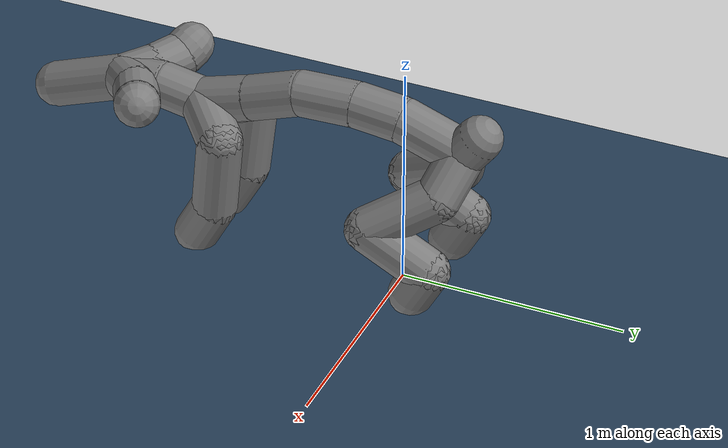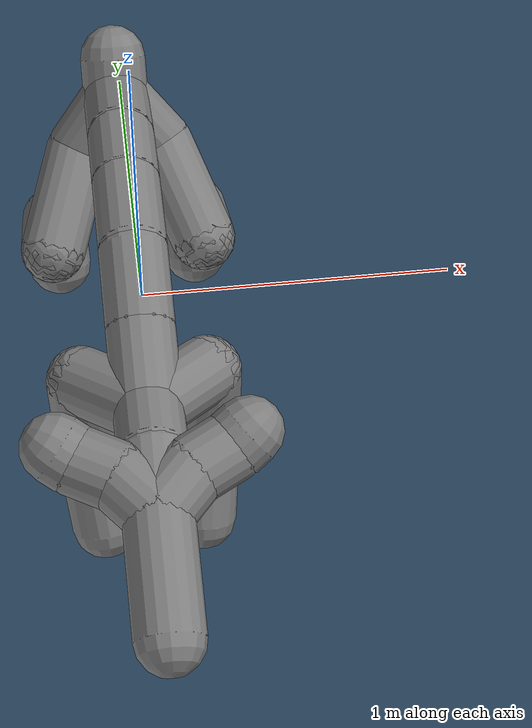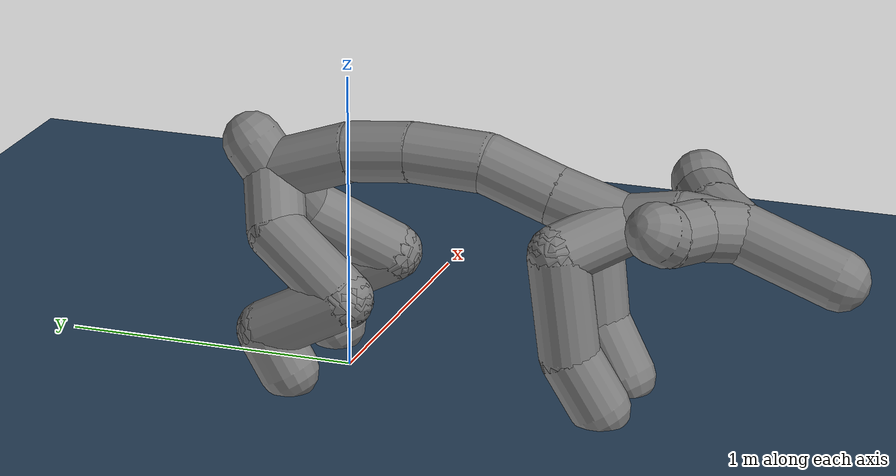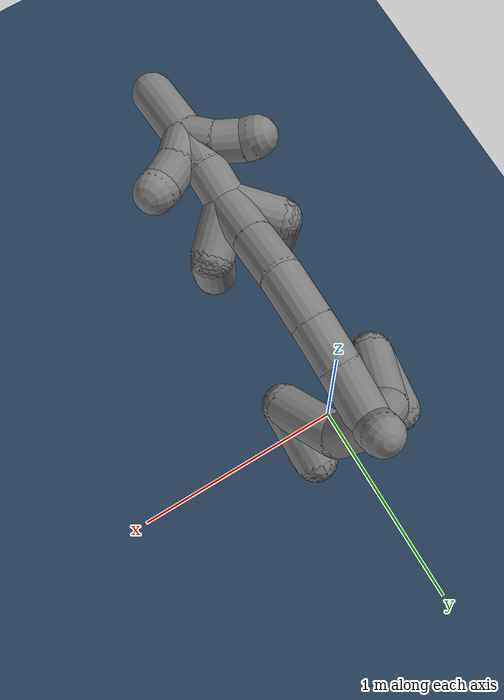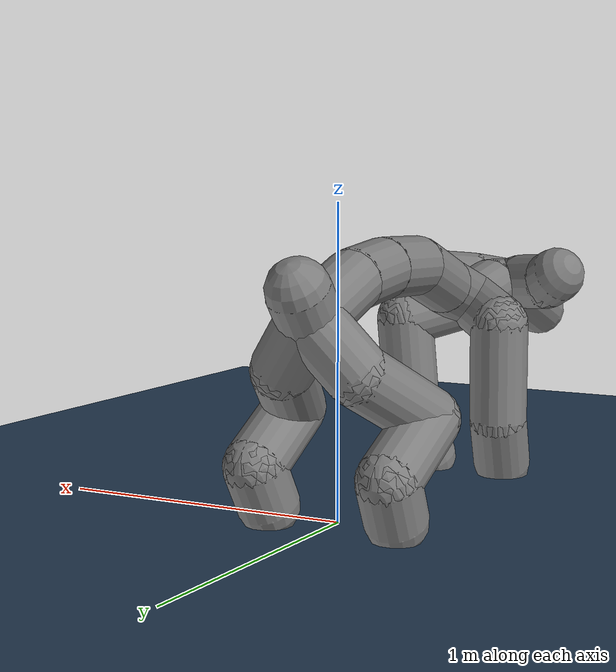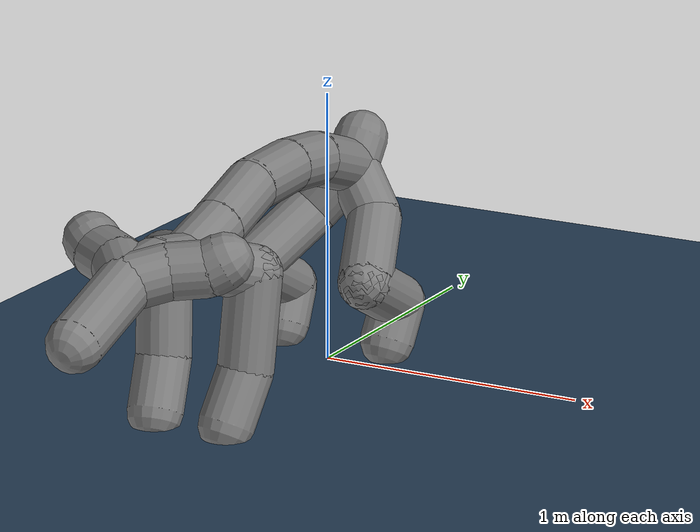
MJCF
<mujoco model="unnamed_model">
  <compiler angle="degree"/>
  <option timestep="0.001" gravity="0 0 -5" integrator="RK4"/>
  <default>
    <default class="/">
      <geom friction="2 0.0050000000000000001 0.0001"/>
      <tendon range="-1 1"/>
      <general ctrllimited="true" forcelimited="false" ctrlrange="-1 1" gainprm="16"/>
      <motor gear="200"/>
    </default>
  </default>
  <asset>
    <texture name="grid" type="2d" builtin="checker" rgb1="0.10000000000000001 0.20000000000000001 0.29999999999999999" rgb2="0.20000000000000001 0.29999999999999999 0.40000000000000002" width="512" height="512"/>
    <material name="grid" class="/" texture="grid" texrepeat="1 1" texuniform="true" reflectance="0.20000000000000001"/>
  </asset>
  <worldbody>
    <geom name="floor" class="/" type="plane" condim="3" size="0 0 0.050000000000000003" material="grid" density="800"/>
    <body name="Back_1" pos="-0.03638419508934021 0.32031768560409546 0.75876384973526001">
      <joint name="//unnamed_joint_0" class="/" type="free"/>
      <geom name="Back_1_geom" class="/" type="capsule" size="0.10000000000000001" density="800" fromto="0 0 0 0 -0.071091830730438232 -0.092527091503143311"/>
      <body name="Back_2" pos="0 -0.071091830730438232 -0.092527091503143311">
        <joint name="rx_Back_2" class="/" type="hinge" axis="1 0 0" stiffness="25" range="-15.000000417413029 15.000000417413029" damping="0.5"/>
        <joint name="ry_Back_2" class="/" type="hinge" axis="0 1 0" stiffness="25" range="-9.9999997090929202 9.9999997090929202" damping="0.5"/>
        <joint name="rz_Back_2" class="/" type="hinge" axis="0 0 1" stiffness="25" range="-15.000000417413029 15.000000417413029" damping="0.5"/>
        <geom name="Back_2_geom" class="/" type="capsule" size="0.10000000000000001" density="800" fromto="0 0 0 0 -0.2740018367767334 0.095168530941009521"/>
        <body name="Back_3" pos="0 -0.2740018367767334 0.095168530941009521">
          <joint name="rx_Back_3" class="/" type="hinge" axis="1 0 0" stiffness="25" range="-15.000000417413029 15.000000417413029" damping="0.5"/>
          <joint name="ry_Back_3" class="/" type="hinge" axis="0 1 0" stiffness="25" range="-9.9999997090929202 9.9999997090929202" damping="0.5"/>
          <joint name="rz_Back_3" class="/" type="hinge" axis="0 0 1" stiffness="25" range="-15.000000417413029 15.000000417413029" damping="0.5"/>
          <geom name="Back_3_geom" class="/" type="capsule" size="0.10000000000000001" density="800" fromto="0 0 0 0 -0.2097725123167038 0.021728336811065674"/>
          <body name="Back_4" pos="0 -0.2097725123167038 0.021728336811065674">
            <joint name="rx_Back_4" class="/" type="hinge" axis="1 0 0" stiffness="25" range="-15.000000417413029 15.000000417413029" damping="0.5"/>
            <joint name="ry_Back_4" class="/" type="hinge" axis="0 1 0" stiffness="25" range="-9.9999997090929202 9.9999997090929202" damping="0.5"/>
            <joint name="rz_Back_4" class="/" type="hinge" axis="0 0 1" stiffness="25" range="-15.000000417413029 15.000000417413029" damping="0.5"/>
            <geom name="Back_4_geom" class="/" type="capsule" size="0.10000000000000001" density="800" fromto="0 0 0 0 -0.25589346885681152 -0.0089598298072814941"/>
            <body name="Back_5" pos="0 -0.25589346885681152 -0.0089598298072814941">
              <joint name="rx_Back_5" class="/" type="hinge" axis="1 0 0" stiffness="25" range="-15.000000417413029 15.000000417413029" damping="0.5"/>
              <joint name="ry_Back_5" class="/" type="hinge" axis="0 1 0" stiffness="25" range="-9.9999997090929202 9.9999997090929202" damping="0.5"/>
              <joint name="rz_Back_5" class="/" type="hinge" axis="0 0 1" stiffness="25" range="-15.000000417413029 15.000000417413029" damping="0.5"/>
              <geom name="Back_5_geom" class="/" type="capsule" size="0.10000000000000001" density="800" fromto="0 0 0 0 -0.23085629940032959 -0.082915425300598145"/>
              <body name="Back_6" pos="0 -0.23085629940032959 -0.082915425300598145">
                <joint name="rx_Back_6" class="/" type="hinge" axis="1 0 0" stiffness="25" range="-15.000000417413029 15.000000417413029" damping="0.5"/>
                <joint name="ry_Back_6" class="/" type="hinge" axis="0 1 0" stiffness="25" range="-9.9999997090929202 9.9999997090929202" damping="0.5"/>
                <joint name="rz_Back_6" class="/" type="hinge" axis="0 0 1" stiffness="25" range="-15.000000417413029 15.000000417413029" damping="0.5"/>
                <geom name="Back_6_geom" class="/" type="capsule" size="0.10000000000000001" density="800" fromto="0 0 0 0 -0.23470097780227661 -0.07146763801574707"/>
                <body name="Neck" pos="0 -0.23470097780227661 -0.07146763801574707">
                  <geom name="Neck_geom" class="/" type="capsule" size="0.10000000000000001" density="800" fromto="0 0 0 0 -0.18661510944366455 0.033073067665100098"/>
                  <body name="Head" pos="0 -0.18661510944366455 0.033073067665100098">
                    <geom name="Head_geom" class="/" type="capsule" size="0.10000000000000001" density="800" fromto="0 0 0 -0.003004610538482666 -0.18622291088104248 -0.011018574237823486"/>
                    <body name="L_Ear_1" pos="-0.003004610538482666 -0.18622291088104248 -0.011018574237823486">
                      <geom name="L_Ear_1_geom" class="/" type="capsule" size="0.10000000000000001" density="800" fromto="0 0 0 0.098775967955589294 0.10522949695587158 0.025567770004272461"/>
                      <body name="L_Ear_2" pos="0.098775967955589294 0.10522949695587158 0.025567770004272461">
                        <geom name="L_Ear_2_geom" class="/" type="capsule" size="0.10000000000000001" density="800" fromto="0 0 0 0.1209293007850647 0.067456483840942383 0.010155320167541504"/>
                        <body name="L_Ear_3" pos="0.1209293007850647 0.067456483840942383 0.010155320167541504">
                          <geom name="L_Ear_3_geom" class="/" type="capsule" size="0.10000000000000001" density="800" fromto="0 0 0 0.045888260006904602 0.02377474308013916 0.026908338069915771"/>
                        </body>
                      </body>
                    </body>
                    <body name="R_Ear_1" pos="-0.003004610538482666 -0.18622291088104248 -0.011018574237823486">
                      <geom name="R_Ear_1_geom" class="/" type="capsule" size="0.10000000000000001" density="800" fromto="0 0 0 -0.092766717076301575 0.10522949695587158 0.025567770004272461"/>
                      <body name="R_Ear_2" pos="-0.092766717076301575 0.10522949695587158 0.025567770004272461">
                        <geom name="R_Ear_2_geom" class="/" type="capsule" size="0.10000000000000001" density="800" fromto="0 0 0 -0.12092931568622589 0.067456483840942383 0.010155320167541504"/>
                        <body name="R_Ear_3" pos="-0.12092931568622589 0.067456483840942383 0.010155320167541504">
                          <geom name="R_Ear_3_geom" class="/" type="capsule" size="0.10000000000000001" density="800" fromto="0 0 0 -0.045888215303421021 0.02377474308013916 0.026908338069915771"/>
                        </body>
                      </body>
                    </body>
                    <body name="Nose" pos="-0.003004610538482666 -0.18622291088104248 -0.011018574237823486">
                      <geom name="Nose_geom" class="/" type="capsule" size="0.10000000000000001" density="800" fromto="0 0 0 7.4505805969238281e-09 -0.33017373085021973 -0.12187623977661133"/>
                    </body>
                    <site name="Head" class="/" type="box" size="0.002 0.002 0.002"/>
                  </body>
                </body>
                <body name="L_F_Paw_1" pos="0 -0.23470097780227661 -0.07146763801574707">
                  <geom name="L_F_Paw_1_geom" class="/" type="capsule" size="0.10000000000000001" density="800" fromto="0 0 0 0.17953817546367645 0.16833937168121338 -0.060213387012481689"/>
                  <body name="L_F_Paw_2" pos="0.17953817546367645 0.16833937168121338 -0.060213387012481689">
                    <joint name="rx_L_F_Paw_2" class="/" type="hinge" axis="1 0 0" stiffness="10" range="-19.99999941818584 9.9999997090929202" damping="0.40000000000000002"/>
                    <joint name="ry_L_F_Paw_2" class="/" type="hinge" axis="0 1 0" stiffness="10" range="-19.99999941818584 19.99999941818584" damping="0.40000000000000002"/>
                    <joint name="rz_L_F_Paw_2" class="/" type="hinge" axis="0 0 1" stiffness="10" range="-45.00000125223908 45.00000125223908" damping="0.40000000000000002"/>
                    <geom name="L_F_Paw_2_geom" class="/" type="capsule" size="0.10000000000000001" density="800" fromto="0 0 0 -0.014132246375083923 -0.039042651653289795 -0.34415319561958313"/>
                    <body name="L_F_Paw_3" pos="-0.014132246375083923 -0.039042651653289795 -0.34415319561958313">
                      <joint name="rz_L_F_Paw_3" class="/" type="hinge" axis="0 0 1" stiffness="10" range="-30.000000834826057 30.000000834826057" damping="0.40000000000000002"/>
                      <geom name="L_F_Paw_3_geom" class="/" type="capsule" size="0.10000000000000001" density="800" fromto="0 0 0 -0.021816067397594452 -0.098170757293701172 -0.17515115439891815"/>
                    </body>
                  </body>
                </body>
                <body name="R_F_Paw_1" pos="0 -0.23470097780227661 -0.07146763801574707">
                  <geom name="R_F_Paw_1_geom" class="/" type="capsule" size="0.10000000000000001" density="800" fromto="0 0 0 -0.17953811585903168 0.16833937168121338 -0.060213387012481689"/>
                  <body name="R_F_Paw_2" pos="-0.17953811585903168 0.16833937168121338 -0.060213387012481689">
                    <joint name="rx_R_F_Paw_2" class="/" type="hinge" axis="1 0 0" stiffness="10" range="-19.99999941818584 9.9999997090929202" damping="0.40000000000000002"/>
                    <joint name="ry_R_F_Paw_2" class="/" type="hinge" axis="0 1 0" stiffness="10" range="-19.99999941818584 19.99999941818584" damping="0.40000000000000002"/>
                    <joint name="rz_R_F_Paw_2" class="/" type="hinge" axis="0 0 1" stiffness="10" range="-45.00000125223908 45.00000125223908" damping="0.40000000000000002"/>
                    <geom name="R_F_Paw_2_geom" class="/" type="capsule" size="0.10000000000000001" density="800" fromto="0 0 0 0.014132246375083923 -0.039042651653289795 -0.34415331482887268"/>
                    <body name="R_F_Paw_3" pos="0.014132246375083923 -0.039042651653289795 -0.34415331482887268">
                      <joint name="rz_R_F_Paw_3" class="/" type="hinge" axis="0 0 1" stiffness="10" range="-30.000000834826057 30.000000834826057" damping="0.40000000000000002"/>
                      <geom name="R_F_Paw_3_geom" class="/" type="capsule" size="0.10000000000000001" density="800" fromto="0 0 0 0.021816074848175049 -0.098170638084411621 -0.17515107989311218"/>
                    </body>
                  </body>
                </body>
              </body>
            </body>
          </body>
        </body>
      </body>
      <body name="R_B_Paw_1" pos="0 -0.071091830730438232 -0.092527091503143311">
        <joint name="rx_R_B_Paw_1" class="/" type="hinge" axis="1 0 0" stiffness="10" range="-39.999998836371681 39.999998836371681" damping="0.40000000000000002"/>
        <geom name="R_B_Paw_1_geom" class="/" type="capsule" size="0.10000000000000001" density="800" fromto="0 0 0 -0.12856116890907288 -0.060687735676765442 -0.1629948616027832"/>
        <body name="R_B_Paw_2" pos="-0.12856116890907288 -0.060687735676765442 -0.1629948616027832">
          <joint name="rx_R_B_Paw_2" class="/" type="hinge" axis="1 0 0" stiffness="10" range="-25.000000126505949 31.999999752116263" damping="0.40000000000000002"/>
          <joint name="ry_R_B_Paw_2" class="/" type="hinge" axis="0 1 0" stiffness="10" range="-19.99999941818584 19.99999941818584" damping="0.40000000000000002"/>
          <joint name="rz_R_B_Paw_2" class="/" type="hinge" axis="0 0 1" stiffness="10" range="-30.000000834826057 39.999998836371681" damping="0.40000000000000002"/>
          <geom name="R_B_Paw_2_geom" class="/" type="capsule" size="0.10000000000000001" density="800" fromto="0 0 0 -0.1057131290435791 -0.26967060565948486 -0.16305962204933167"/>
          <body name="R_B_Paw_3" pos="-0.1057131290435791 -0.26967060565948486 -0.16305962204933167">
            <joint name="rz_R_B_Paw_3" class="/" type="hinge" axis="0 0 1" stiffness="10" range="-39.999998836371681 15.000000417413029" damping="0.40000000000000002"/>
            <geom name="R_B_Paw_3_geom" class="/" type="capsule" size="0.10000000000000001" density="800" fromto="0 0 0 0.007300645112991333 0.27059853076934814 -0.14332710206508636"/>
            <body name="R_B_Paw_4" pos="0.007300645112991333 0.27059853076934814 -0.14332710206508636">
              <joint name="rz_R_B_Paw_4" class="/" type="hinge" axis="0 0 1" stiffness="10" range="-19.99999941818584 19.99999941818584" damping="0.40000000000000002"/>
              <geom name="R_B_Paw_4_geom" class="/" type="capsule" size="0.10000000000000001" density="800" fromto="0 0 0 0.006926417350769043 -0.073839575052261353 -0.13510023057460785"/>
            </body>
          </body>
        </body>
      </body>
      <body name="L_B_Paw_1" pos="0 -0.071091830730438232 -0.092527091503143311">
        <joint name="rx_L_B_Paw_1" class="/" type="hinge" axis="1 0 0" stiffness="10" range="-39.999998836371681 39.999998836371681" damping="0.40000000000000002"/>
        <geom name="L_B_Paw_1_geom" class="/" type="capsule" size="0.10000000000000001" density="800" fromto="0 0 0 0.12856115400791168 -0.060687720775604248 -0.1629948616027832"/>
        <body name="L_B_Paw_2" pos="0.12856115400791168 -0.060687720775604248 -0.1629948616027832">
          <joint name="rx_L_B_Paw_2" class="/" type="hinge" axis="1 0 0" stiffness="10" range="-25.000000126505949 31.999999752116263" damping="0.40000000000000002"/>
          <joint name="ry_L_B_Paw_2" class="/" type="hinge" axis="0 1 0" stiffness="10" range="-19.99999941818584 19.99999941818584" damping="0.40000000000000002"/>
          <joint name="rz_L_B_Paw_2" class="/" type="hinge" axis="0 0 1" stiffness="10" range="-39.999998836371681 30.000000834826057" damping="0.40000000000000002"/>
          <geom name="L_B_Paw_2_geom" class="/" type="capsule" size="0.10000000000000001" density="800" fromto="0 0 0 0.10558731853961945 -0.26967057585716248 -0.16305959224700928"/>
          <body name="L_B_Paw_3" pos="0.10558731853961945 -0.26967057585716248 -0.16305959224700928">
            <joint name="rz_L_B_Paw_3" class="/" type="hinge" axis="0 0 1" stiffness="10" range="-15.000000417413029 39.999998836371681" damping="0.40000000000000002"/>
            <geom name="L_B_Paw_3_geom" class="/" type="capsule" size="0.10000000000000001" density="800" fromto="0 0 0 -0.0073006749153137207 0.27059847116470337 -0.14332719147205353"/>
            <body name="L_B_Paw_4" pos="-0.0073006749153137207 0.27059847116470337 -0.14332719147205353">
              <joint name="rz_L_B_Paw_4" class="/" type="hinge" axis="0 0 1" stiffness="10" range="-19.99999941818584 19.99999941818584" damping="0.40000000000000002"/>
              <geom name="L_B_Paw_4_geom" class="/" type="capsule" size="0.10000000000000001" density="800" fromto="0 0 0 -0.0068006217479705811 -0.073839530348777771 -0.13510012626647949"/>
            </body>
          </body>
        </body>
      </body>
    </body>
    <camera name="cam0" class="/" mode="trackcom" pos="5 -17 7" xyaxes="1 0.25 0 0 0.29999999999999999 1"/>
  </worldbody>
  <tendon>
    <fixed name="back_x" class="/">
      <joint joint="rx_Back_2" coef="0.002"/>
      <joint joint="rx_Back_3" coef="0.002"/>
      <joint joint="rx_Back_4" coef="0.002"/>
      <joint joint="rx_Back_5" coef="0.002"/>
      <joint joint="rx_Back_6" coef="0.002"/>
    </fixed>
    <fixed name="back_y" class="/">
      <joint joint="ry_Back_2" coef="0.002"/>
      <joint joint="ry_Back_3" coef="0.002"/>
      <joint joint="ry_Back_4" coef="0.002"/>
      <joint joint="ry_Back_5" coef="0.002"/>
      <joint joint="ry_Back_6" coef="0.002"/>
    </fixed>
    <fixed name="back_z" class="/">
      <joint joint="rz_Back_2" coef="0.002"/>
      <joint joint="rz_Back_3" coef="0.002"/>
      <joint joint="rz_Back_4" coef="0.002"/>
      <joint joint="rz_Back_5" coef="0.002"/>
      <joint joint="rz_Back_6" coef="0.002"/>
    </fixed>
  </tendon>
  <actuator>
    <motor name="rx_L_F_Paw_2_motor" class="/" gear="300" joint="rx_L_F_Paw_2"/>
    <motor name="ry_L_F_Paw_2_motor" class="/" gear="300" joint="ry_L_F_Paw_2"/>
    <motor name="rz_L_F_Paw_2_motor" class="/" gear="300" joint="rz_L_F_Paw_2"/>
    <motor name="rz_L_F_Paw_3_motor" class="/" gear="300" joint="rz_L_F_Paw_3"/>
    <motor name="rx_R_F_Paw_2_motor" class="/" gear="300" joint="rx_R_F_Paw_2"/>
    <motor name="ry_R_F_Paw_2_motor" class="/" gear="300" joint="ry_R_F_Paw_2"/>
    <motor name="rz_R_F_Paw_2_motor" class="/" gear="300" joint="rz_R_F_Paw_2"/>
    <motor name="rz_R_F_Paw_3_motor" class="/" gear="300" joint="rz_R_F_Paw_3"/>
    <motor name="rx_R_B_Paw_1_motor" class="/" gear="200" joint="rx_R_B_Paw_1"/>
    <motor name="rx_R_B_Paw_2_motor" class="/" gear="200" joint="rx_R_B_Paw_2"/>
    <motor name="ry_R_B_Paw_2_motor" class="/" gear="200" joint="ry_R_B_Paw_2"/>
    <motor name="rz_R_B_Paw_2_motor" class="/" gear="200" joint="rz_R_B_Paw_2"/>
    <motor name="rz_R_B_Paw_3_motor" class="/" gear="200" joint="rz_R_B_Paw_3"/>
    <motor name="rz_R_B_Paw_4_motor" class="/" gear="200" joint="rz_R_B_Paw_4"/>
    <motor name="rx_L_B_Paw_1_motor" class="/" gear="200" joint="rx_L_B_Paw_1"/>
    <motor name="rx_L_B_Paw_2_motor" class="/" gear="200" joint="rx_L_B_Paw_2"/>
    <motor name="ry_L_B_Paw_2_motor" class="/" gear="200" joint="ry_L_B_Paw_2"/>
    <motor name="rz_L_B_Paw_2_motor" class="/" gear="200" joint="rz_L_B_Paw_2"/>
    <motor name="rz_L_B_Paw_3_motor" class="/" gear="200" joint="rz_L_B_Paw_3"/>
    <motor name="rz_L_B_Paw_4_motor" class="/" gear="200" joint="rz_L_B_Paw_4"/>
    <general name="back_x_motor" class="/" tendon="back_x" gainprm="16"/>
    <general name="back_y_motor" class="/" tendon="back_y" gainprm="16"/>
    <general name="back_z_motor" class="/" tendon="back_z" gainprm="16"/>
  </actuator>
  <sensor>
    <accelerometer name="accelerometer" site="Head"/>
    <velocimeter name="velocimeter" site="Head"/>
    <gyro name="gyro" site="Head"/>
  </sensor>
</mujoco>
